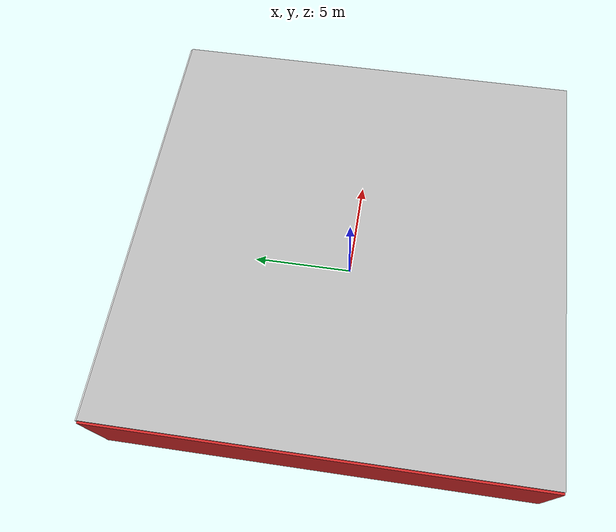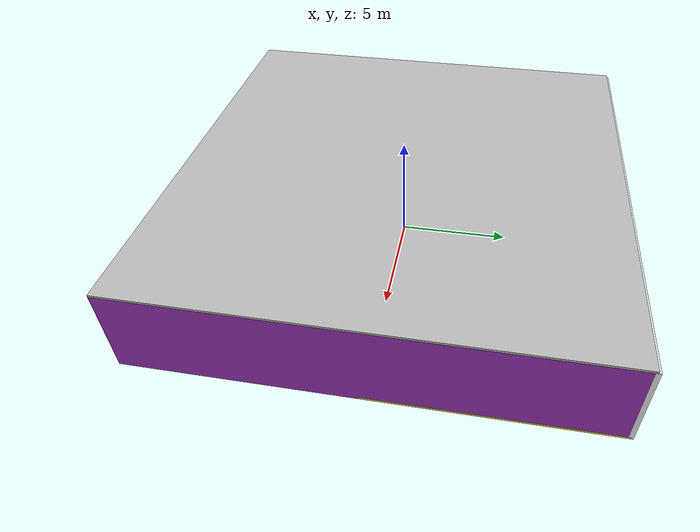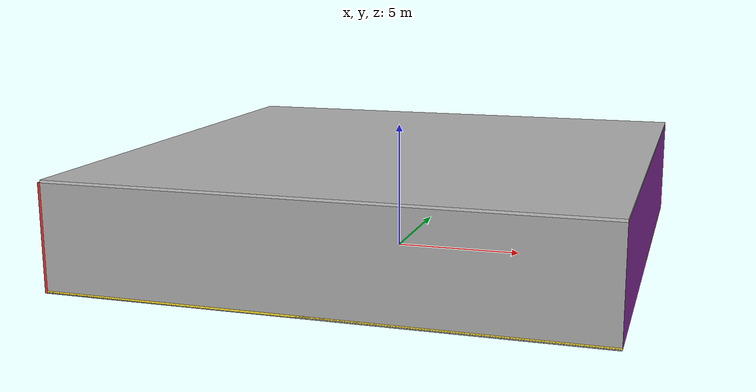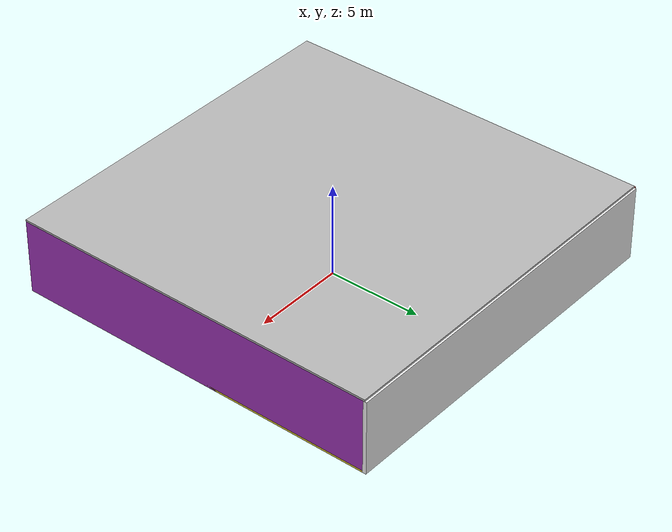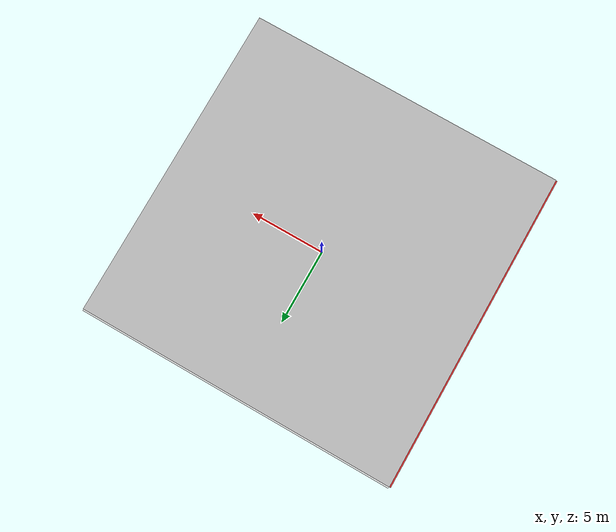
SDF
<sdf version="1.4">
 <world name="default">
  <physics type="ode">
   <max_step_size>0.001</max_step_size>
   <real_time_factor>1</real_time_factor>
   <real_time_update_rate>1000</real_time_update_rate>
   <gravity>0 0 -9.8</gravity>
  </physics>
  <scene><ambient>0.4 0.4 0.4 1</ambient><background>0.7 0.7 0.7 1</background><shadows>1</shadows></scene>
  <model name="Surrounding">
   <static>1</static>
   <link name="Ceiling">
    <collision name="Ceiling_Collision"><geometry><box><size>20 20 0.1</size></box></geometry></collision>
    <visual name="Ceiling_Visual">
     <geometry><box><size>20 20 0.1</size></box></geometry>
     <material>
      <script><uri>file://media/materials/scripts/gazebo.material</uri><name>Gazebo/LightOn</name></script>
     </material>
    </visual>
    <pose>0 0 4.05 0 0 0</pose>
   </link>
   <link name="Wall_South">
    <collision name="Wall_South_Collision">
     <geometry><box><size>20 0 4</size></box></geometry>
     <pose>0 0 2 0 -0 0</pose>
    </collision>
    <visual name="Wall_South_Visual">
     <pose>0 0 2 0 -0 0</pose>
     <geometry><box><size>20 0 4</size></box></geometry>
     <material>
      <script><uri>file://media/materials/scripts/gazebo.material</uri><name>Gazebo/GreyGradientSky</name></script>
     </material>
    </visual>
    <velocity_decay><linear>0</linear><angular>0</angular></velocity_decay>
    <pose>0 -10 0 0 -0 0</pose>
   </link>
   <link name="Wall_East">
    <collision name="Wall_21_Collision">
     <geometry><box><size>20 0 4</size></box></geometry>
     <pose>0 0 2 0 -0 0</pose>
    </collision>
    <visual name="Wall_21_Visual">
     <pose>0 0 2 0 -0 0</pose>
     <geometry><box><size>20 0 4</size></box></geometry>
     <material>
      <script><uri>file://media/materials/scripts/gazebo.material</uri><name>Gazebo/Purple</name></script>
     </material>
    </visual>
    <velocity_decay><linear>0</linear><angular>0</angular></velocity_decay>
    <pose>10 0 0 0 -0 1.5708</pose>
   </link>
   <link name="Wall_North">
    <collision name="Wall_22_Collision">
     <geometry><box><size>20 0.2 4</size></box></geometry>
     <pose>0 0 2 0 -0 0</pose>
    </collision>
    <visual name="Wall_22_Visual">
     <pose>0 0 2 0 -0 0</pose>
     <geometry><box><size>20 0.2 4</size></box></geometry>
     <material>
      <script><uri>file://media/materials/scripts/gazebo.material</uri><name>Gazebo/WhiteGlow</name></script>
     </material>
    </visual>
    <velocity_decay><linear>0</linear><angular>0</angular></velocity_decay>
    <pose>0 10 0 0 -0 0</pose>
   </link>
   <link name="Wall_West">
    <collision name="Wall_23_Collision">
     <geometry><box><size>20 0.2 4</size></box></geometry>
     <pose>0 0 2 0 -0 0</pose>
    </collision>
    <visual name="Wall_23_Visual">
     <pose>0 0 2 0 -0 0</pose>
     <geometry><box><size>20 0.2 4</size></box></geometry>
     <material>
      <script><uri>file://media/materials/scripts/gazebo.material</uri><name>Gazebo/Red</name></script>
     </material>
    </visual>
    <velocity_decay><linear>0</linear><angular>0</angular></velocity_decay>
    <pose>-10 0 0 0 0 -1.5708</pose>
   </link>
   <link name="Ground_link">
    <collision name="collision">
     <pose>0 0 .05 0 -0 0</pose>
     <geometry><box><size>20 20 0.1</size></box></geometry>
    </collision>
    <visual name="visual">
     <pose>0 0 .05 0 -0 0</pose>
     <geometry><box><size>20 20 0.1</size></box></geometry>
     <material>
      <script><uri>file://media/materials/scripts/gazebo.material</uri><name>Gazebo/ZincYellow</name></script>
     </material>
    </visual>
   </link>
   <static>1</static>
  </model>
  <spherical_coordinates>
   <surface_model>EARTH_WGS84</surface_model>
   <latitude_deg>0</latitude_deg>
   <longitude_deg>0</longitude_deg>
   <elevation>0</elevation>
   <heading_deg>0</heading_deg>
  </spherical_coordinates>
  <light name="lightball_0" type="diffuse">
   <diffuse>0.8 0.8 0.8 1</diffuse>
   <specular>0.2 0.2 0.2 1</specular>
   <attenuation>
    <range>100</range>
    <constant>0.7</constant>
    <linear>0.01</linear>
    <quadratic>0.001</quadratic>
   </attenuation>
   <direction>-0.5 0.1 -0.9</direction>
   <pose>-4.63376372148 7.06551029671 1.77445299547 0 0 0</pose>
  </light>
  <light name="lightball_1" type="diffuse">
   <diffuse>0.8 0.8 0.8 1</diffuse>
   <specular>0.2 0.2 0.2 1</specular>
   <attenuation>
    <range>100</range>
    <constant>0.7</constant>
    <linear>0.01</linear>
    <quadratic>0.001</quadratic>
   </attenuation>
   <direction>-0.5 0.1 -0.9</direction>
   <pose>7.66128496925 1.76858979127 1.95058019633 0 0 0</pose>
  </light>
  <light name="lightball_2" type="diffuse">
   <diffuse>0.8 0.8 0.8 1</diffuse>
   <specular>0.2 0.2 0.2 1</specular>
   <attenuation>
    <range>100</range>
    <constant>0.7</constant>
    <linear>0.01</linear>
    <quadratic>0.001</quadratic>
   </attenuation>
   <direction>-0.5 0.1 -0.9</direction>
   <pose>5.64936334128 -3.35862125085 1.88001023562 0 0 0</pose>
  </light>
  <light name="lightball_3" type="diffuse">
   <diffuse>0.8 0.8 0.8 1</diffuse>
   <specular>0.2 0.2 0.2 1</specular>
   <attenuation>
    <range>100</range>
    <constant>0.7</constant>
    <linear>0.01</linear>
    <quadratic>0.001</quadratic>
   </attenuation>
   <direction>-0.5 0.1 -0.9</direction>
   <pose>-1.79426056017 8.42809678711 3.65658838659 0 0 0</pose>
  </light>
  <light name="lightball_4" type="diffuse">
   <diffuse>0.8 0.8 0.8 1</diffuse>
   <specular>0.2 0.2 0.2 1</specular>
   <attenuation>
    <range>100</range>
    <constant>0.7</constant>
    <linear>0.01</linear>
    <quadratic>0.001</quadratic>
   </attenuation>
   <direction>-0.5 0.1 -0.9</direction>
   <pose>1.48191231528 -8.64260251753 1.66128118919 0 0 0</pose>
  </light>
  <light name="lightball_5" type="diffuse">
   <diffuse>0.8 0.8 0.8 1</diffuse>
   <specular>0.2 0.2 0.2 1</specular>
   <attenuation>
    <range>100</range>
    <constant>0.7</constant>
    <linear>0.01</linear>
    <quadratic>0.001</quadratic>
   </attenuation>
   <direction>-0.5 0.1 -0.9</direction>
   <pose>-9.49323104585 -2.42206964328 2.60383527043 0 0 0</pose>
  </light>
  <light name="lightball_6" type="diffuse">
   <diffuse>0.8 0.8 0.8 1</diffuse>
   <specular>0.2 0.2 0.2 1</specular>
   <attenuation>
    <range>100</range>
    <constant>0.7</constant>
    <linear>0.01</linear>
    <quadratic>0.001</quadratic>
   </attenuation>
   <direction>-0.5 0.1 -0.9</direction>
   <pose>7.57744713205 8.96329926014 3.12231365707 0 0 0</pose>
  </light>
  <light name="lightball_7" type="diffuse">
   <diffuse>0.8 0.8 0.8 1</diffuse>
   <specular>0.2 0.2 0.2 1</specular>
   <attenuation>
    <range>100</range>
    <constant>0.7</constant>
    <linear>0.01</linear>
    <quadratic>0.001</quadratic>
   </attenuation>
   <direction>-0.5 0.1 -0.9</direction>
   <pose>3.90761877469 1.45712923032 2.17630521841 0 0 0</pose>
  </light>
  <include><uri>model://cabinet</uri><pose>-1.882634269 -4.21847321425 0 0 0 0.430234233285</pose></include>
  <include><uri>model://table</uri><pose>1.18243319732 -4.03120597642 0 0 0 2.76058415856</pose></include>
  <include>
   <uri>model://construction_cone</uri>
   <pose>1.02109153751 -1.87757999128 0 0 0 1.27666500566</pose>
  </include>
  <include><uri>model://cabinet</uri><pose>4.30635883399 4.12661768448 0 0 0 0.471695224298</pose></include>
 </world>
</sdf>

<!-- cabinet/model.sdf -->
<sdf version="1.5">
  <model name="cabinet">
    <static>true</static>
    <link name="cabinet_bottom_plate">
      <inertial>
        <pose>0 0 -1 0 0 0</pose>
        <inertia>
          <ixx>2.050000</ixx>
          <ixy>0</ixy>
          <ixz>0</ixz>
          <iyy>2.050000</iyy>
          <iyz>0</iyz>
          <izz>2.050000</izz>
        </inertia>
        <mass>25.000000</mass>
      </inertial>
      <collision name="cabinet_bottom_plate_geom">
        <pose>0 0 0.010000 0 0 0</pose>
        <geometry>
          <box>
            <size>0.450000 0.450000 0.020000</size>
          </box>
        </geometry>
      </collision>
      <visual name="cabinet_bottom_plate_geom_visual">
        <pose>0 0 0.010000 0 0 0</pose>
        <geometry>
          <box>
            <size>0.450000 0.450000 0.020000</size>
          </box>
        </geometry>
        <material>
          <script>
            <uri>model://media/materials/scripts/gazebo.material</uri>
            <name>Gazebo/Wood</name>
          </script>
        </material>
      </visual>
      <collision name="cabinet_bottom_plate_geom_cabinet_back_plate">
        <pose>0.235000 0 0.510000 0 0 0</pose>
        <geometry>
          <box>
            <size>0.020000 0.450000 1.020000</size>
          </box>
        </geometry>
      </collision>
      <visual name="cabinet_bottom_plate_geom_cabinet_back_plate_visual">
        <pose>0.235000 0 0.510000 0 0 0</pose>
        <geometry>
          <box>
            <size>0.020000 0.450000 1.020000</size>
          </box>
        </geometry>
        <material>
          <script>
            <uri>model://media/materials/scripts/gazebo.material</uri>
            <name>Gazebo/Wood</name>
          </script>
        </material>
      </visual>
      <collision name="cabinet_bottom_plate_geom_cabinet_left_plate">
        <pose>0 0.235000 0.510000 0 0 0</pose>
        <geometry>
          <box>
            <size>0.450000 0.020000 1.020000</size>
          </box>
        </geometry>
      </collision>
      <visual name="cabinet_bottom_plate_geom_cabinet_left_plate_visual">
        <pose>0 0.235000 0.510000 0 0 0</pose>
        <geometry>
          <box>
            <size>0.450000 0.020000 1.020000</size>
          </box>
        </geometry>
        <material>
          <script>
            <uri>model://media/materials/scripts/gazebo.material</uri>
            <name>Gazebo/Wood</name>
          </script>
        </material>
      </visual>
      <collision name="cabinet_bottom_plate_geom_cabinet_middle_plate">
        <pose>0 0 0.510000 0 0 0</pose>
        <geometry>
          <box>
            <size>0.450000 0.450000 0.020000</size>
          </box>
        </geometry>
      </collision>
      <visual name="cabinet_bottom_plate_geom_cabinet_middle_plate_visual">
        <pose>0 0 0.510000 0 0 0</pose>
        <geometry>
          <box>
            <size>0.450000 0.450000 0.020000</size>
          </box>
        </geometry>
        <material>
          <script>
            <uri>model://media/materials/scripts/gazebo.material</uri>
            <name>Gazebo/Wood</name>
          </script>
        </material>
      </visual>
      <collision name="cabinet_bottom_plate_geom_cabinet_right_plate">
        <pose>0 -0.235000 0.510000 0 0 0</pose>
        <geometry>
          <box>
            <size>0.450000 0.020000 1.020000</size>
          </box>
        </geometry>
      </collision>
      <visual name="cabinet_bottom_plate_geom_cabinet_right_plate_visual">
        <pose>0 -0.235000 0.510000 0 0 0</pose>
        <geometry>
          <box>
            <size>0.450000 0.020000 1.020000</size>
          </box>
        </geometry>
        <material>
          <script>
            <uri>model://media/materials/scripts/gazebo.material</uri>
            <name>Gazebo/Wood</name>
          </script>
        </material>
      </visual>
      <collision name="cabinet_bottom_plate_geom_cabinet_top_plate">
        <pose>0 0 1.010000 0 0 0</pose>
        <geometry>
          <box>
            <size>0.450000 0.450000 0.020000</size>
          </box>
        </geometry>
      </collision>
      <visual name="cabinet_bottom_plate_geom_cabinet_top_plate_visual">
        <pose>0 0 1.010000 0 0 0</pose>
        <geometry>
          <box>
            <size>0.450000 0.450000 0.020000</size>
          </box>
        </geometry>
        <material>
          <script>
            <uri>model://media/materials/scripts/gazebo.material</uri>
            <name>Gazebo/Wood</name>
          </script>
        </material>
      </visual>
    </link>
  </model>
</sdf>

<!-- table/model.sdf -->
<sdf version="1.5">
  <model name="table">
    <static>true</static>
    <link name="link">
      <collision name="surface">
        <pose>0 0 1.0 0 0 0</pose>
        <geometry>
          <box>
            <size>1.5 0.8 0.03</size>
          </box>
        </geometry>
        <surface>
          <friction>
            <ode>
              <mu>0.6</mu>
              <mu2>0.6</mu2>
            </ode>
          </friction>
        </surface>
      </collision>
      <visual name="visual1">
        <pose>0 0 1.0 0 0 0</pose>
        <geometry>
          <box>
            <size>1.5 0.8 0.03</size>
          </box>
        </geometry>
        <material>
          <script>
            <uri>model://media/materials/scripts/gazebo.material</uri>
            <name>Gazebo/Wood</name>
          </script>
        </material>
      </visual>
      <collision name="front_left_leg">
        <pose>0.68 0.38 0.5 0 0 0</pose>
        <geometry>
          <cylinder>
            <radius>0.02</radius>
            <length>1.0</length>
          </cylinder>
        </geometry>
      </collision>
      <visual name="front_left_leg">
        <pose>0.68 0.38 0.5 0 0 0</pose>
        <geometry>
          <cylinder>
            <radius>0.02</radius>
            <length>1.0</length>
          </cylinder>
        </geometry>
        <material>
          <script>
            <uri>model://media/materials/scripts/gazebo.material</uri>
            <name>Gazebo/Grey</name>
          </script>
        </material>
      </visual>
      <collision name="front_right_leg">
        <pose>0.68 -0.38 0.5 0 0 0</pose>
        <geometry>
          <cylinder>
            <radius>0.02</radius>
            <length>1.0</length>
          </cylinder>
        </geometry>
      </collision>
      <visual name="front_right_leg">
        <pose>0.68 -0.38 0.5 0 0 0</pose>
        <geometry>
          <cylinder>
            <radius>0.02</radius>
            <length>1.0</length>
          </cylinder>
        </geometry>
        <material>
          <script>
            <uri>model://media/materials/scripts/gazebo.material</uri>
            <name>Gazebo/Grey</name>
          </script>
        </material>
      </visual>
      <collision name="back_right_leg">
        <pose>-0.68 -0.38 0.5 0 0 0</pose>
        <geometry>
          <cylinder>
            <radius>0.02</radius>
            <length>1.0</length>
          </cylinder>
        </geometry>
      </collision>
      <visual name="back_right_leg">
        <pose>-0.68 -0.38 0.5 0 0 0</pose>
        <geometry>
          <cylinder>
            <radius>0.02</radius>
            <length>1.0</length>
          </cylinder>
        </geometry>
        <material>
          <script>
            <uri>model://media/materials/scripts/gazebo.material</uri>
            <name>Gazebo/Grey</name>
          </script>
        </material>
      </visual>
      <collision name="back_left_leg">
        <pose>-0.68 0.38 0.5 0 0 0</pose>
        <geometry>
          <cylinder>
            <radius>0.02</radius>
            <length>1.0</length>
          </cylinder>
        </geometry>
      </collision>
      <visual name="back_left_leg">
        <pose>-0.68 0.38 0.5 0 0 0</pose>
        <geometry>
          <cylinder>
            <radius>0.02</radius>
            <length>1.0</length>
          </cylinder>
        </geometry>
        <material>
          <script>
            <uri>model://media/materials/scripts/gazebo.material</uri>
            <name>Gazebo/Grey</name>
          </script>
        </material>
      </visual>
    </link>
  </model>
</sdf>

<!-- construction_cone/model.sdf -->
<sdf version="1.5">
  <model name="Construction Cone">
    <link name="link">
      <collision name="collision">
        <geometry>
          <mesh>
            <scale>10 10 10</scale>
            <uri>file://isr-testbed/construction_cone/meshes/construction_cone.dae</uri>
          </mesh>
        </geometry>
      </collision>
      <visual name="visual">
        <geometry>
          <mesh>
            <scale>10 10 10</scale>
            <uri>file://isr-testbed/construction_cone/meshes/construction_cone.dae</uri>
          </mesh>
        </geometry>
      </visual>
    </link>
  </model>
</sdf>
